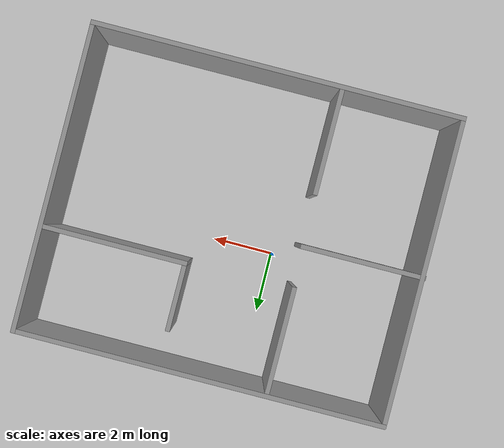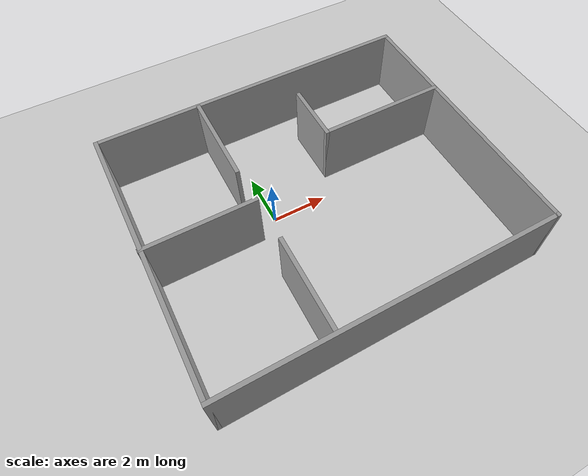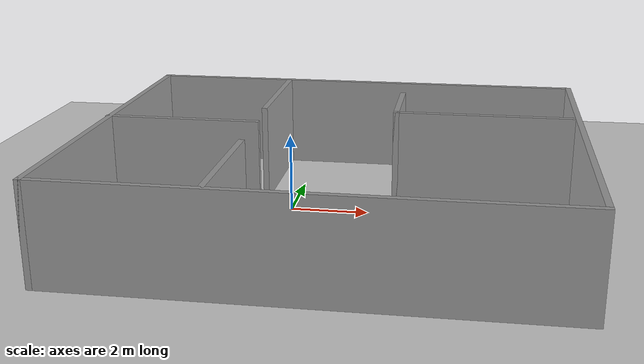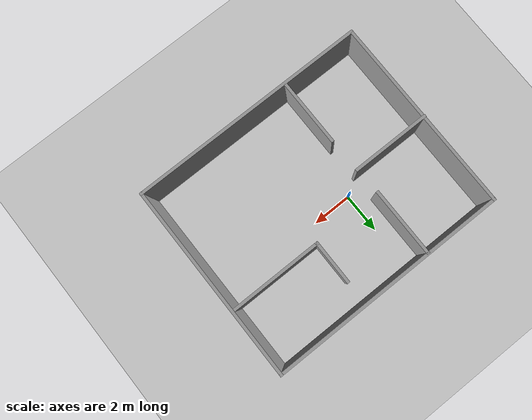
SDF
<sdf version="1.4">
  <world name="default">

    <scene>
      <ambient>0.4 0.4 0.4 1</ambient>
      <background>0.7 0.7 0.7 1</background>
      <shadows>true</shadows>
    </scene>

    <!-- A global light source -->
    <include>
      <uri>model://sun</uri>
    </include>

    <!-- A ground plane -->
    <include>
      <uri>model://ground_plane</uri>
    </include>

    <physics type="ode">
      <real_time_update_rate>1000.0</real_time_update_rate>
      <max_step_size>0.001</max_step_size>
      <real_time_factor>1</real_time_factor>
      <ode>
        <solver>
          <type>quick</type>
          <iters>150</iters>
          <precon_iters>0</precon_iters>
          <sor>1.400000</sor>
          <use_dynamic_moi_rescaling>1</use_dynamic_moi_rescaling>
        </solver>
        <constraints>
          <cfm>0.00001</cfm>
          <erp>0.2</erp>
          <contact_max_correcting_vel>2000.000000</contact_max_correcting_vel>
          <contact_surface_layer>0.01000</contact_surface_layer>
        </constraints>
      </ode>
    </physics>

    <include>
      <uri>/home/jorge/catkin_ws/src/simple_navigation_goals/models/program3_rooms</uri>
    </include>
  </world>

</sdf>

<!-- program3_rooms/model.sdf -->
<sdf version='1.6'>
  <model name='program3_rooms'>
    <pose frame=''>1.31623 -0.676916 0 0 -0 0</pose>
    <link name='Wall_26'>
      <collision name='Wall_26_Collision'>
        <geometry>
          <box>
            <size>12 0.15 2.5</size>
          </box>
        </geometry>
        <pose frame=''>0 0 1.25 0 -0 0</pose>
      </collision>
      <visual name='Wall_26_Visual'>
        <pose frame=''>0 0 1.25 0 -0 0</pose>
        <geometry>
          <box>
            <size>12 0.15 2.5</size>
          </box>
        </geometry>
        <material>
          <script>
            <uri>file://media/materials/scripts/gazebo.material</uri>
            <name>Gazebo/Grey</name>
          </script>
          <ambient>1 1 1 1</ambient>
        </material>
        <meta>
          <layer>0</layer>
        </meta>
      </visual>
      <pose frame=''>0.013604 -4.925 0 0 -0 0</pose>
    </link>
    <link name='Wall_27'>
      <collision name='Wall_27_Collision'>
        <geometry>
          <box>
            <size>10 0.15 2.5</size>
          </box>
        </geometry>
        <pose frame=''>0 0 1.25 0 -0 0</pose>
      </collision>
      <visual name='Wall_27_Visual'>
        <pose frame=''>0 0 1.25 0 -0 0</pose>
        <geometry>
          <box>
            <size>10 0.15 2.5</size>
          </box>
        </geometry>
        <material>
          <script>
            <uri>file://media/materials/scripts/gazebo.material</uri>
            <name>Gazebo/Grey</name>
          </script>
          <ambient>1 1 1 1</ambient>
        </material>
        <meta>
          <layer>0</layer>
        </meta>
      </visual>
      <pose frame=''>5.9386 -0 0 0 -0 1.5708</pose>
    </link>
    <link name='Wall_28'>
      <collision name='Wall_28_Collision'>
        <geometry>
          <box>
            <size>12 0.15 2.5</size>
          </box>
        </geometry>
        <pose frame=''>0 0 1.25 0 -0 0</pose>
      </collision>
      <visual name='Wall_28_Visual'>
        <pose frame=''>0 0 1.25 0 -0 0</pose>
        <geometry>
          <box>
            <size>12 0.15 2.5</size>
          </box>
        </geometry>
        <material>
          <script>
            <uri>file://media/materials/scripts/gazebo.material</uri>
            <name>Gazebo/Grey</name>
          </script>
          <ambient>1 1 1 1</ambient>
        </material>
        <meta>
          <layer>0</layer>
        </meta>
      </visual>
      <pose frame=''>0.013604 4.925 0 0 -0 3.14159</pose>
    </link>
    <link name='Wall_29'>
      <collision name='Wall_29_Collision'>
        <geometry>
          <box>
            <size>10 0.15 2.5</size>
          </box>
        </geometry>
        <pose frame=''>0 0 1.25 0 -0 0</pose>
      </collision>
      <visual name='Wall_29_Visual'>
        <pose frame=''>0 0 1.25 0 -0 0</pose>
        <geometry>
          <box>
            <size>10 0.15 2.5</size>
          </box>
        </geometry>
        <material>
          <script>
            <uri>file://media/materials/scripts/gazebo.material</uri>
            <name>Gazebo/Grey</name>
          </script>
          <ambient>1 1 1 1</ambient>
        </material>
        <meta>
          <layer>0</layer>
        </meta>
      </visual>
      <pose frame=''>-5.9114 -0 0 0 -0 -1.5708</pose>
    </link>
    <link name='Wall_31'>
      <collision name='Wall_31_Collision'>
        <geometry>
          <box>
            <size>4 0.15 2.5</size>
          </box>
        </geometry>
        <pose frame=''>0 0 1.25 0 -0 0</pose>
      </collision>
      <visual name='Wall_31_Visual'>
        <pose frame=''>0 0 1.25 0 -0 0</pose>
        <geometry>
          <box>
            <size>4 0.15 2.5</size>
          </box>
        </geometry>
        <material>
          <script>
            <uri>file://media/materials/scripts/gazebo.material</uri>
            <name>Gazebo/Grey</name>
          </script>
          <ambient>1 1 1 1</ambient>
        </material>
        <meta>
          <layer>0</layer>
        </meta>
      </visual>
      <pose frame=''>-4.01361 0.16319 0 0 -0 0</pose>
    </link>
    <link name='Wall_33'>
      <collision name='Wall_33_Collision'>
        <geometry>
          <box>
            <size>3.5 0.15 2.5</size>
          </box>
        </geometry>
        <pose frame=''>0 0 1.25 0 -0 0</pose>
      </collision>
      <visual name='Wall_33_Visual'>
        <pose frame=''>0 0 1.25 0 -0 0</pose>
        <geometry>
          <box>
            <size>3.5 0.15 2.5</size>
          </box>
        </geometry>
        <material>
          <script>
            <uri>file://media/materials/scripts/gazebo.material</uri>
            <name>Gazebo/Grey</name>
          </script>
          <ambient>1 1 1 1</ambient>
        </material>
        <meta>
          <layer>0</layer>
        </meta>
      </visual>
      <pose frame=''>-2.04764 -3.22601 0 0 -0 -1.5708</pose>
    </link>
    <link name='Wall_36'>
      <collision name='Wall_36_Collision'>
        <geometry>
          <box>
            <size>3.5 0.15 2.5</size>
          </box>
        </geometry>
        <pose frame=''>0 0 1.25 0 -0 0</pose>
      </collision>
      <visual name='Wall_36_Visual'>
        <pose frame=''>0 0 1.25 0 -0 0</pose>
        <geometry>
          <box>
            <size>3.5 0.15 2.5</size>
          </box>
        </geometry>
        <material>
          <script>
            <uri>file://media/materials/scripts/gazebo.material</uri>
            <name>Gazebo/Grey</name>
          </script>
          <ambient>1 1 1 1</ambient>
        </material>
        <meta>
          <layer>0</layer>
        </meta>
      </visual>
      <pose frame=''>-2.15456 3.18956 0 0 -0 1.5708</pose>
    </link>
    <link name='Wall_40'>
      <collision name='Wall_40_Collision'>
        <geometry>
          <box>
            <size>4.75 0.15 2.5</size>
          </box>
        </geometry>
        <pose frame=''>0 0 1.25 0 -0 0</pose>
      </collision>
      <visual name='Wall_40_Visual'>
        <pose frame=''>0 0 1.25 0 -0 0</pose>
        <geometry>
          <box>
            <size>4.75 0.15 2.5</size>
          </box>
        </geometry>
        <material>
          <script>
            <uri>file://media/materials/scripts/gazebo.material</uri>
            <name>Gazebo/Grey</name>
          </script>
          <ambient>1 1 1 1</ambient>
        </material>
        <meta>
          <layer>0</layer>
        </meta>
      </visual>
      <pose frame=''>3.61459 1.57331 0 0 -0 0</pose>
    </link>
    <link name='Wall_42'>
      <collision name='Wall_42_Collision'>
        <geometry>
          <box>
            <size>2.25 0.15 2.5</size>
          </box>
        </geometry>
        <pose frame=''>0 0 1.25 0 -0 0</pose>
      </collision>
      <visual name='Wall_42_Visual'>
        <pose frame=''>0 0 1.25 0 -0 0</pose>
        <geometry>
          <box>
            <size>2.25 0.15 2.5</size>
          </box>
        </geometry>
        <material>
          <script>
            <uri>file://media/materials/scripts/gazebo.material</uri>
            <name>Gazebo/Grey</name>
          </script>
          <ambient>1 1 1 1</ambient>
        </material>
        <meta>
          <layer>0</layer>
        </meta>
      </visual>
      <pose frame=''>1.31459 2.62331 0 0 -0 1.5708</pose>
    </link>
    <static>1</static>
  </model>
</sdf>
